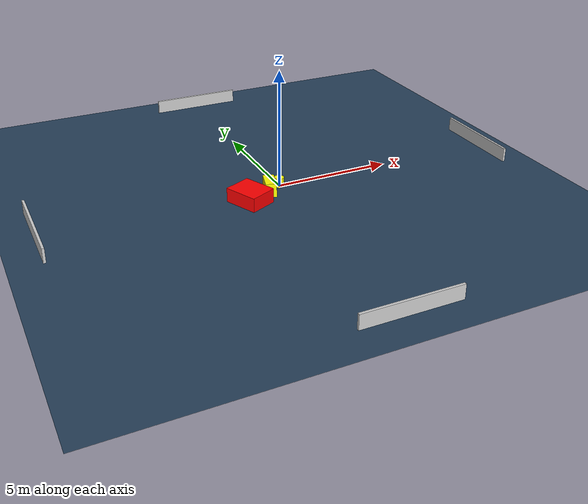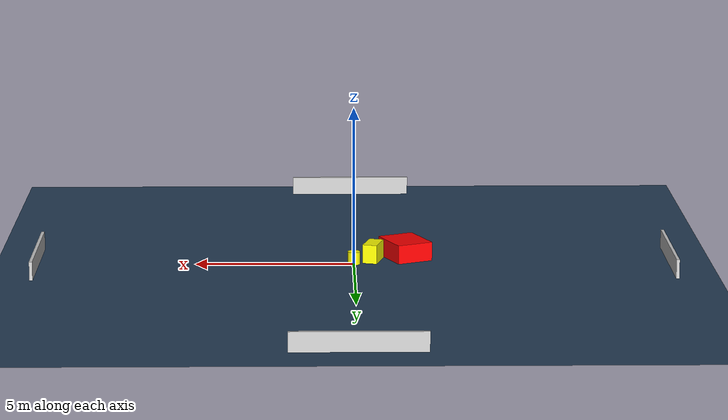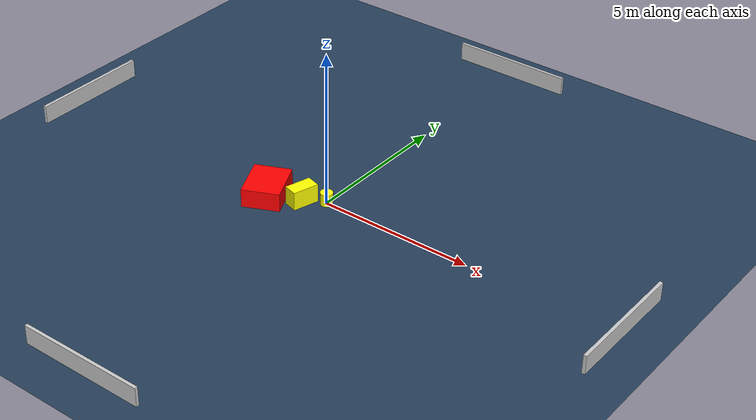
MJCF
<?xml version="1.0" ?>
<mujoco model="generated_environment">
  <option timestep="0.01" integrator="RK4" cone="elliptic"/>
  <default>
    <geom density="1"/>
  </default>
  <asset>
    <texture builtin="gradient" height="3072" name="skybox" rgb1="0.3 0.5 0.7" rgb2="0 0 0" type="skybox" width="512"/>
    <texture builtin="checker" height="300" name="groundplane" rgb1="0.2 0.3 0.4" rgb2="0.1 0.2 0.3" type="2d" width="300"/>
    <material name="groundplane" reflectance="0.2" texrepeat="5 5" texture="groundplane"/>
  </asset>
  <worldbody>
    <light dir="0 0 -1" directional="true" pos="0 0 1.5"/>
    <geom condim="3" friction="0.5 0.005 0.001" material="groundplane" name="floor" pos="0 0 0" size="0 0 0.05" type="plane"/>
    <body name="walls">
      <geom name="wall_1" condim="4" pos="-10.0 0.0 0.3" rgba="0.800000011920929 0.800000011920929 0.800000011920929 1.0" size="0.05 2.0 0.3" type="box"/>
      <geom name="wall_2" condim="4" pos="10.0 0.0 0.3" rgba="0.800000011920929 0.800000011920929 0.800000011920929 1.0" size="0.05 2.0 0.3" type="box"/>
      <geom name="wall_3" condim="4" pos="0.0 -10.0 0.3" rgba="0.800000011920929 0.800000011920929 0.800000011920929 1.0" size="2.0 0.05 0.3" type="box"/>
      <geom name="wall_4" condim="4" pos="0.0 10.0 0.3" rgba="0.800000011920929 0.800000011920929 0.800000011920929 1.0" size="2.0 0.05 0.3" type="box"/>
    </body>
    <body name="robot">
      <joint name="joint_x" type="slide" pos="0 0 0" axis="1 0 0"/>
      <joint name="joint_y" type="slide" pos="0 0 0" axis="0 1 0"/>
      <geom name="robot" type="cylinder" pos="0.0 0.0 0.2" size="0.2 0.2 0.0" mass="5.0" friction="1.0 0.005 0.0001" condim="4" rgba="1.0 1.0 0.0 1.0"/>
    </body>
    <body name="obstacle_1_movable">
      <geom name="obstacle_1_movable" condim="4" pos="-0.6140586303224379 -0.4111370459362928 0.3" euler="0 0 344.00814301386146" friction="0.0 0.005 0.001" rgba="1.0 1.0 0.0 1.0" size="0.22612715931472405 0.4262909141900707 0.3" type="box" mass="0.1"/>
      <joint type="free"/>
    </body>
    <body name="obstacle_2_static">
      <geom name="obstacle_2_static" condim="4" pos="-1.6417398858488792 -0.8023125159085495 0.3" euler="0 0 294.58923229145023" friction="0.0 0.005 0.001" rgba="1.0 0.0 0.0 1.0" size="0.7236353930760542 0.5920713854608053 0.3" type="box"/>
    </body>
  </worldbody>
  <actuator>
    <motor name="actuator_x" joint="joint_x" gear="1" ctrlrange="-1 1"/>
    <motor name="actuator_y" joint="joint_y" gear="1" ctrlrange="-1 1"/>
  </actuator>
</mujoco>
